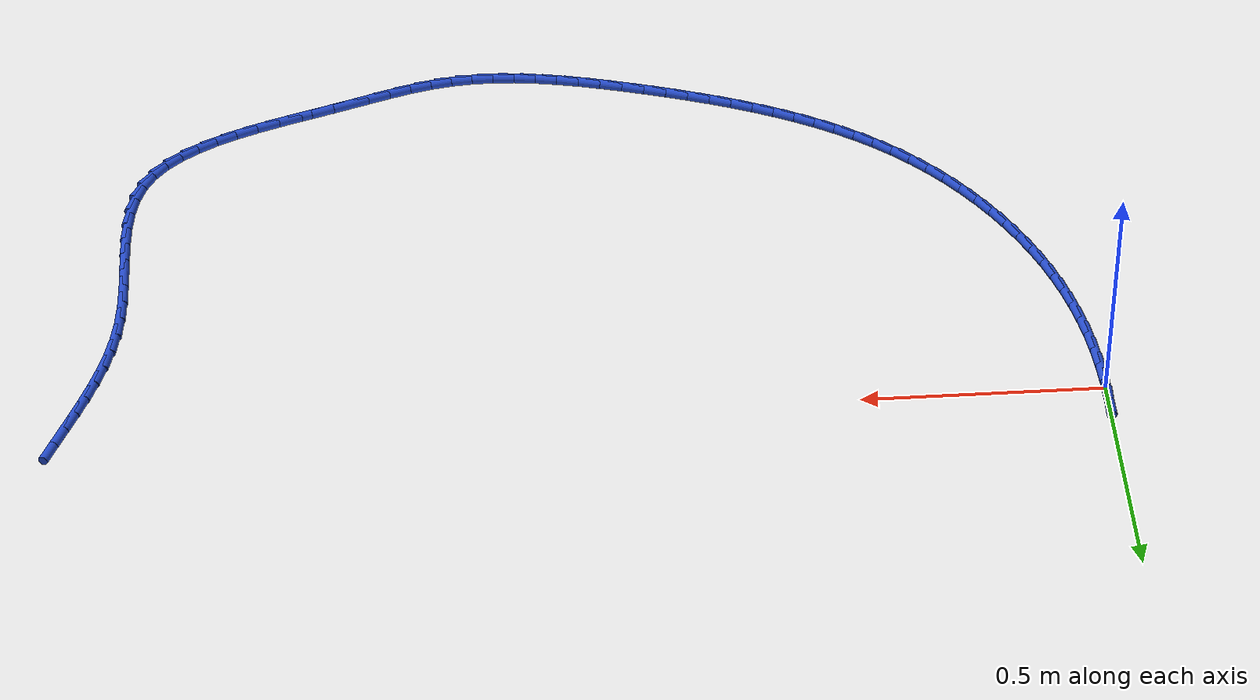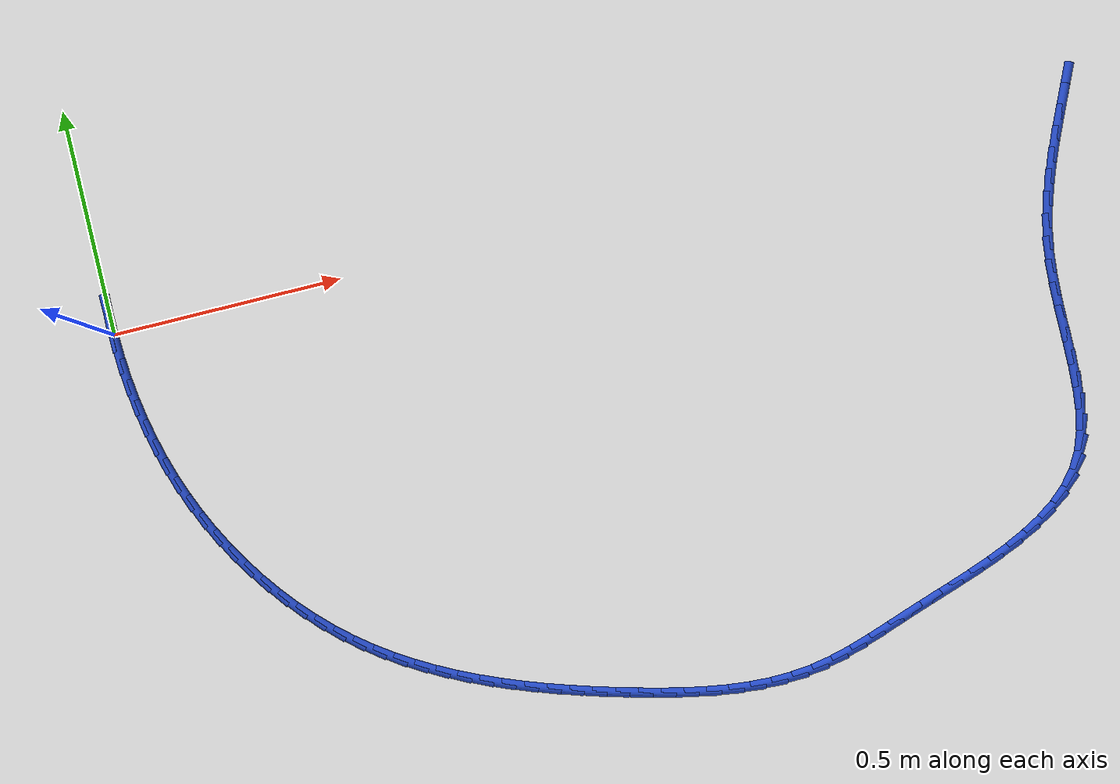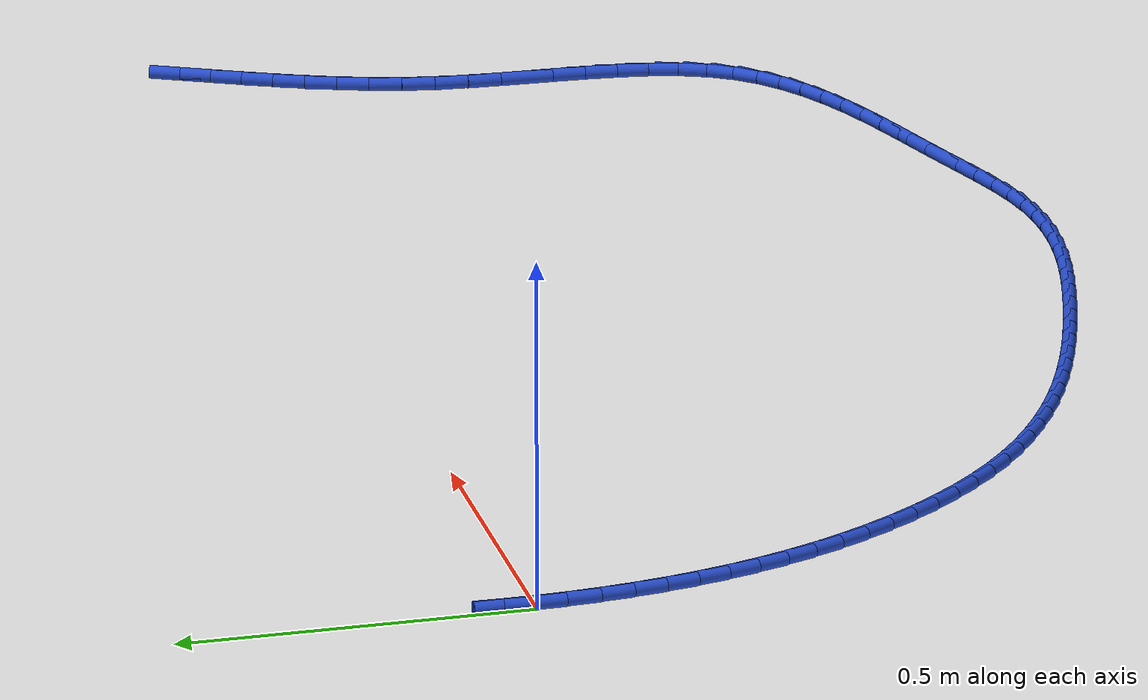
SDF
<sdf version="1.6">
 <world name="default">
  <model name="ground_plane">
   <static>1</static>
   <link name="link">
    <collision name="collision">
     <geometry><plane><normal>0 0 1</normal><size>100 100</size></plane></geometry>
     <surface><friction><ode><mu>100</mu><mu2>50</mu2></ode></friction></surface>
    </collision>
    <visual name="visual">
     <cast_shadows>0</cast_shadows>
     <geometry><plane><normal>0 0 1</normal><size>100 100</size></plane></geometry>
     <material>
      <script><uri>file://media/materials/scripts/gazebo.material</uri><name>Gazebo/WhiteGlow</name></script>
     </material>
    </visual>
   </link>
  </model>
  <model name="line">
   <link name="link_0">
    <pose>6.071532165918825e-18 8.326672684688674e-17 0.01 0 1.57 -1.5597542882293989</pose>
    <collision name="collision">
     <geometry><cylinder><radius>0.01</radius><length>0.08</length></cylinder></geometry>
    </collision>
    <visual name="visual">
     <material>
      <script><name>Gazebo/Blue</name><uri>file://media/materials/scripts/gazebo.material</uri></script>
     </material>
     <geometry><cylinder><radius>0.01</radius><length>0.08</length></cylinder></geometry>
    </visual>
   </link>
   <link name="link_1">
    <pose>-0.0005402952393984356 0.04892876231369978 0.01 0 1.57 1.541204479486744</pose>
    <collision name="collision">
     <geometry><cylinder><radius>0.01</radius><length>0.08</length></cylinder></geometry>
    </collision>
    <visual name="visual">
     <material>
      <script><name>Gazebo/Blue</name><uri>file://media/materials/scripts/gazebo.material</uri></script>
     </material>
     <geometry><cylinder><radius>0.01</radius><length>0.08</length></cylinder></geometry>
    </visual>
   </link>
   <link name="link_78">
    <pose>2.1295487594955205 0.03743914772433124 0.01 0 1.57 1.1259487516540034</pose>
    <collision name="collision">
     <geometry><cylinder><radius>0.01</radius><length>0.08</length></cylinder></geometry>
    </collision>
    <visual name="visual">
     <material>
      <script><name>Gazebo/Blue</name><uri>file://media/materials/scripts/gazebo.material</uri></script>
     </material>
     <geometry><cylinder><radius>0.01</radius><length>0.08</length></cylinder></geometry>
    </visual>
   </link>
   <link name="link_79">
    <pose>2.1091169455305026 -0.005420354326589889 0.01 0 1.57 1.126731117023253</pose>
    <collision name="collision">
     <geometry><cylinder><radius>0.01</radius><length>0.08</length></cylinder></geometry>
    </collision>
    <visual name="visual">
     <material>
      <script><name>Gazebo/Blue</name><uri>file://media/materials/scripts/gazebo.material</uri></script>
     </material>
     <geometry><cylinder><radius>0.01</radius><length>0.08</length></cylinder></geometry>
    </visual>
   </link>
   <link name="link_80">
    <pose>2.0886274414572825 -0.04848758235811345 0.01 0 1.57 1.1395375372983945</pose>
    <collision name="collision">
     <geometry><cylinder><radius>0.01</radius><length>0.08</length></cylinder></geometry>
    </collision>
    <visual name="visual">
     <material>
      <script><name>Gazebo/Blue</name><uri>file://media/materials/scripts/gazebo.material</uri></script>
     </material>
     <geometry><cylinder><radius>0.01</radius><length>0.08</length></cylinder></geometry>
    </visual>
   </link>
   <link name="link_81">
    <pose>2.0686316028050733 -0.09194305552503665 0.01 0 1.57 1.1643073467445144</pose>
    <collision name="collision">
     <geometry><cylinder><radius>0.01</radius><length>0.08</length></cylinder></geometry>
    </collision>
    <visual name="visual">
     <material>
      <script><name>Gazebo/Blue</name><uri>file://media/materials/scripts/gazebo.material</uri></script>
     </material>
     <geometry><cylinder><radius>0.01</radius><length>0.08</length></cylinder></geometry>
    </visual>
   </link>
   <link name="link_82">
    <pose>2.049680785103091 -0.13596729298215476 0.01 0 1.57 1.2010207366002288</pose>
    <collision name="collision">
     <geometry><cylinder><radius>0.01</radius><length>0.08</length></cylinder></geometry>
    </collision>
    <visual name="visual">
     <material>
      <script><name>Gazebo/Blue</name><uri>file://media/materials/scripts/gazebo.material</uri></script>
     </material>
     <geometry><cylinder><radius>0.01</radius><length>0.08</length></cylinder></geometry>
    </visual>
   </link>
   <link name="link_83">
    <pose>2.03232634388055 -0.18074081388426289 0.01 0 1.57 1.2495919755594584</pose>
    <collision name="collision">
     <geometry><cylinder><radius>0.01</radius><length>0.08</length></cylinder></geometry>
    </collision>
    <visual name="visual">
     <material>
      <script><name>Gazebo/Blue</name><uri>file://media/materials/scripts/gazebo.material</uri></script>
     </material>
     <geometry><cylinder><radius>0.01</radius><length>0.08</length></cylinder></geometry>
    </visual>
   </link>
   <link name="link_84">
    <pose>2.017119634666665 -0.22644413738615832 0.01 0 1.57 1.3097157015065861</pose>
    <collision name="collision">
     <geometry><cylinder><radius>0.01</radius><length>0.08</length></cylinder></geometry>
    </collision>
    <visual name="visual">
     <material>
      <script><name>Gazebo/Blue</name><uri>file://media/materials/scripts/gazebo.material</uri></script>
     </material>
     <geometry><cylinder><radius>0.01</radius><length>0.08</length></cylinder></geometry>
    </visual>
   </link>
   <link name="link_85">
    <pose>2.004612012990652 -0.2732577826426355 0.01 0 1.57 1.3806765601021136</pose>
    <collision name="collision">
     <geometry><cylinder><radius>0.01</radius><length>0.08</length></cylinder></geometry>
    </collision>
    <visual name="visual">
     <material>
      <script><name>Gazebo/Blue</name><uri>file://media/materials/scripts/gazebo.material</uri></script>
     </material>
     <geometry><cylinder><radius>0.01</radius><length>0.08</length></cylinder></geometry>
    </visual>
   </link>
   <link name="link_86">
    <pose>1.9953546116338436 -0.32136216407954804 0.01 0 1.57 1.4537378015769884</pose>
    <collision name="collision">
     <geometry><cylinder><radius>0.01</radius><length>0.08</length></cylinder></geometry>
    </collision>
    <visual name="visual">
     <material>
      <script><name>Gazebo/Blue</name><uri>file://media/materials/scripts/gazebo.material</uri></script>
     </material>
     <geometry><cylinder><radius>0.01</radius><length>0.08</length></cylinder></geometry>
    </visual>
   </link>
   <link name="link_87">
    <pose>1.9895443070122918 -0.3707711360869299 0.01 0 1.57 1.5063964218680699</pose>
    <collision name="collision">
     <geometry><cylinder><radius>0.01</radius><length>0.08</length></cylinder></geometry>
    </collision>
    <visual name="visual">
     <material>
      <script><name>Gazebo/Blue</name><uri>file://media/materials/scripts/gazebo.material</uri></script>
     </material>
     <geometry><cylinder><radius>0.01</radius><length>0.08</length></cylinder></geometry>
    </visual>
   </link>
   <link name="link_88">
    <pose>1.9863054618118219 -0.4209942913313108 0.01 0 1.57 1.5362184551931717</pose>
    <collision name="collision">
     <geometry><cylinder><radius>0.01</radius><length>0.08</length></cylinder></geometry>
    </collision>
    <visual name="visual">
     <material>
      <script><name>Gazebo/Blue</name><uri>file://media/materials/scripts/gazebo.material</uri></script>
     </material>
     <geometry><cylinder><radius>0.01</radius><length>0.08</length></cylinder></geometry>
    </visual>
   </link>
   <link name="link_89">
    <pose>1.9845602480158848 -0.4714461588644795 0.01 0 1.57 1.5442648252155826</pose>
    <collision name="collision">
     <geometry><cylinder><radius>0.01</radius><length>0.08</length></cylinder></geometry>
    </collision>
    <visual name="visual">
     <material>
      <script><name>Gazebo/Blue</name><uri>file://media/materials/scripts/gazebo.material</uri></script>
     </material>
     <geometry><cylinder><radius>0.01</radius><length>0.08</length></cylinder></geometry>
    </visual>
   </link>
   <link name="link_90">
    <pose>1.9832308376079324 -0.5215412677382232 0.01 0 1.57 1.5303033484049997</pose>
    <collision name="collision">
     <geometry><cylinder><radius>0.01</radius><length>0.08</length></cylinder></geometry>
    </collision>
    <visual name="visual">
     <material>
      <script><name>Gazebo/Blue</name><uri>file://media/materials/scripts/gazebo.material</uri></script>
     </material>
     <geometry><cylinder><radius>0.01</radius><length>0.08</length></cylinder></geometry>
    </visual>
   </link>
   <link name="link_91">
    <pose>1.9812394025714148 -0.5706941470043279 0.01 0 1.57 1.4926090893344475</pose>
    <collision name="collision">
     <geometry><cylinder><radius>0.01</radius><length>0.08</length></cylinder></geometry>
    </collision>
    <visual name="visual">
     <material>
      <script><name>Gazebo/Blue</name><uri>file://media/materials/scripts/gazebo.material</uri></script>
     </material>
     <geometry><cylinder><radius>0.01</radius><length>0.08</length></cylinder></geometry>
    </visual>
   </link>
   <link name="link_92">
    <pose>1.9775081148897848 -0.6183193257145835 0.01 0 1.57 1.4278819313989901</pose>
    <collision name="collision">
     <geometry><cylinder><radius>0.01</radius><length>0.08</length></cylinder></geometry>
    </collision>
    <visual name="visual">
     <material>
      <script><name>Gazebo/Blue</name><uri>file://media/materials/scripts/gazebo.material</uri></script>
     </material>
     <geometry><cylinder><radius>0.01</radius><length>0.08</length></cylinder></geometry>
    </visual>
   </link>
   <link name="link_93">
    <pose>1.9709591465464906 -0.6638313329207748 0.01 0 1.57 1.3315163825500467</pose>
    <collision name="collision">
     <geometry><cylinder><radius>0.01</radius><length>0.08</length></cylinder></geometry>
    </collision>
    <visual name="visual">
     <material>
      <script><name>Gazebo/Blue</name><uri>file://media/materials/scripts/gazebo.material</uri></script>
     </material>
     <geometry><cylinder><radius>0.01</radius><length>0.08</length></cylinder></geometry>
    </visual>
   </link>
   <link name="link_94">
    <pose>1.9605146695249858 -0.706644697674692 0.01 0 1.57 1.1989093873212857</pose>
    <collision name="collision">
     <geometry><cylinder><radius>0.01</radius><length>0.08</length></cylinder></geometry>
    </collision>
    <visual name="visual">
     <material>
      <script><name>Gazebo/Blue</name><uri>file://media/materials/scripts/gazebo.material</uri></script>
     </material>
     <geometry><cylinder><radius>0.01</radius><length>0.08</length></cylinder></geometry>
    </visual>
   </link>
   <link name="link_95">
    <pose>1.9450968558087198 -0.746173949028121 0.01 0 1.57 1.0294599945411178</pose>
    <collision name="collision">
     <geometry><cylinder><radius>0.01</radius><length>0.08</length></cylinder></geometry>
    </collision>
    <visual name="visual">
     <material>
      <script><name>Gazebo/Blue</name><uri>file://media/materials/scripts/gazebo.material</uri></script>
     </material>
     <geometry><cylinder><radius>0.01</radius><length>0.08</length></cylinder></geometry>
    </visual>
   </link>
   <link name="link_96">
    <pose>1.923649501951573 -0.7818453673206515 0.01 0 1.57 0.8516620677811731</pose>
    <collision name="collision">
     <geometry><cylinder><radius>0.01</radius><length>0.08</length></cylinder></geometry>
    </collision>
    <visual name="visual">
     <material>
      <script><name>Gazebo/Blue</name><uri>file://media/materials/scripts/gazebo.material</uri></script>
     </material>
     <geometry><cylinder><radius>0.01</radius><length>0.08</length></cylinder></geometry>
    </visual>
   </link>
   <link name="link_97">
    <pose>1.895916945658604 -0.8135202653239123 0.01 0 1.57 0.7014278966095441</pose>
    <collision name="collision">
     <geometry><cylinder><radius>0.01</radius><length>0.08</length></cylinder></geometry>
    </collision>
    <visual name="visual">
     <material>
      <script><name>Gazebo/Blue</name><uri>file://media/materials/scripts/gazebo.material</uri></script>
     </material>
     <geometry><cylinder><radius>0.01</radius><length>0.08</length></cylinder></geometry>
    </visual>
   </link>
   <link name="link_98">
    <pose>1.8626608267356737 -0.8416127811157331 0.01 0 1.57 0.5817469343441324</pose>
    <collision name="collision">
     <geometry><cylinder><radius>0.01</radius><length>0.08</length></cylinder></geometry>
    </collision>
    <visual name="visual">
     <material>
      <script><name>Gazebo/Blue</name><uri>file://media/materials/scripts/gazebo.material</uri></script>
     </material>
     <geometry><cylinder><radius>0.01</radius><length>0.08</length></cylinder></geometry>
    </visual>
   </link>
   <link name="link_99">
    <pose>1.8247085435567925 -0.866572787488879 0.01 0 1.57 0.4894510212537441</pose>
    <collision name="collision">
     <geometry><cylinder><radius>0.01</radius><length>0.08</length></cylinder></geometry>
    </collision>
    <visual name="visual">
     <material>
      <script><name>Gazebo/Blue</name><uri>file://media/materials/scripts/gazebo.material</uri></script>
     </material>
     <geometry><cylinder><radius>0.01</radius><length>0.08</length></cylinder></geometry>
    </visual>
   </link>
   <link name="link_100">
    <pose>1.7828874944959732 -0.8888501572361142 0.01 0 1.57 0.4201910721192538</pose>
    <collision name="collision">
     <geometry><cylinder><radius>0.01</radius><length>0.08</length></cylinder></geometry>
    </collision>
    <visual name="visual">
     <material>
      <script><name>Gazebo/Blue</name><uri>file://media/materials/scripts/gazebo.material</uri></script>
     </material>
     <geometry><cylinder><radius>0.01</radius><length>0.08</length></cylinder></geometry>
    </visual>
   </link>
   <link name="link_101">
    <pose>1.738025077927228 -0.908894763150203 0.01 0 1.57 0.3700465122258667</pose>
    <collision name="collision">
     <geometry><cylinder><radius>0.01</radius><length>0.08</length></cylinder></geometry>
    </collision>
    <visual name="visual">
     <material>
      <script><name>Gazebo/Blue</name><uri>file://media/materials/scripts/gazebo.material</uri></script>
     </material>
     <geometry><cylinder><radius>0.01</radius><length>0.08</length></cylinder></geometry>
    </visual>
   </link>
   <link name="link_102">
    <pose>1.690948692224568 -0.9271564780239107 0.01 0 1.57 0.3360618508742253</pose>
    <collision name="collision">
     <geometry><cylinder><radius>0.01</radius><length>0.08</length></cylinder></geometry>
    </collision>
    <visual name="visual">
     <material>
      <script><name>Gazebo/Blue</name><uri>file://media/materials/scripts/gazebo.material</uri></script>
     </material>
     <geometry><cylinder><radius>0.01</radius><length>0.08</length></cylinder></geometry>
    </visual>
   </link>
   <link name="link_103">
    <pose>1.6424857357620055 -0.9440851746500015 0.01 0 1.57 0.31632197173776677</pose>
    <collision name="collision">
     <geometry><cylinder><radius>0.01</radius><length>0.08</length></cylinder></geometry>
    </collision>
    <visual name="visual">
     <material>
      <script><name>Gazebo/Blue</name><uri>file://media/materials/scripts/gazebo.material</uri></script>
     </material>
     <geometry><cylinder><radius>0.01</radius><length>0.08</length></cylinder></geometry>
    </visual>
   </link>
   <link name="link_104">
    <pose>1.5934636069135544 -0.96013072582124 0.01 0 1.57 0.30990814692698104</pose>
    <collision name="collision">
     <geometry><cylinder><radius>0.01</radius><length>0.08</length></cylinder></geometry>
    </collision>
    <visual name="visual">
     <material>
      <script><name>Gazebo/Blue</name><uri>file://media/materials/scripts/gazebo.material</uri></script>
     </material>
     <geometry><cylinder><radius>0.01</radius><length>0.08</length></cylinder></geometry>
    </visual>
   </link>
   <link name="link_105">
    <pose>1.5447097040532245 -0.9757430043303912 0.01 0 1.57 0.3166155469952428</pose>
    <collision name="collision">
     <geometry><cylinder><radius>0.01</radius><length>0.08</length></cylinder></geometry>
    </collision>
    <visual name="visual">
     <material>
      <script><name>Gazebo/Blue</name><uri>file://media/materials/scripts/gazebo.material</uri></script>
     </material>
     <geometry><cylinder><radius>0.01</radius><length>0.08</length></cylinder></geometry>
    </visual>
   </link>
   <link name="link_106">
    <pose>1.4970406149158635 -0.9913611840413539 0.01 0 1.57 0.3245641332559445</pose>
    <collision name="collision">
     <geometry><cylinder><radius>0.01</radius><length>0.08</length></cylinder></geometry>
    </collision>
    <visual name="visual">
     <material>
      <script><name>Gazebo/Blue</name><uri>file://media/materials/scripts/gazebo.material</uri></script>
     </material>
     <geometry><cylinder><radius>0.01</radius><length>0.08</length></cylinder></geometry>
    </visual>
   </link>
   <link name="link_107">
    <pose>1.4507721122703883 -1.0069287989568516 0.01 0 1.57 0.3154102349154724</pose>
    <collision name="collision">
     <geometry><cylinder><radius>0.01</radius><length>0.08</length></cylinder></geometry>
    </collision>
    <visual name="visual">
     <material>
      <script><name>Gazebo/Blue</name><uri>file://media/materials/scripts/gazebo.material</uri></script>
     </material>
     <geometry><cylinder><radius>0.01</radius><length>0.08</length></cylinder></geometry>
    </visual>
   </link>
   <link name="link_108">
    <pose>1.4055185297306805 -1.021695192152662 0.01 0 1.57 0.2865145292667186</pose>
    <collision name="collision">
     <geometry><cylinder><radius>0.01</radius><length>0.08</length></cylinder></geometry>
    </collision>
    <visual name="visual">
     <material>
      <script><name>Gazebo/Blue</name><uri>file://media/materials/scripts/gazebo.material</uri></script>
     </material>
     <geometry><cylinder><radius>0.01</radius><length>0.08</length></cylinder></geometry>
    </visual>
   </link>
   <link name="link_109">
    <pose>1.3608418323408615 -1.0348578792784444 0.01 0 1.57 0.23697567218254945</pose>
    <collision name="collision">
     <geometry><cylinder><radius>0.01</radius><length>0.08</length></cylinder></geometry>
    </collision>
    <visual name="visual">
     <material>
      <script><name>Gazebo/Blue</name><uri>file://media/materials/scripts/gazebo.material</uri></script>
     </material>
     <geometry><cylinder><radius>0.01</radius><length>0.08</length></cylinder></geometry>
    </visual>
   </link>
   <link name="link_110">
    <pose>1.316303985145051 -1.045614375983858 0.01 0 1.57 0.16677964045662463</pose>
    <collision name="collision">
     <geometry><cylinder><radius>0.01</radius><length>0.08</length></cylinder></geometry>
    </collision>
    <visual name="visual">
     <material>
      <script><name>Gazebo/Blue</name><uri>file://media/materials/scripts/gazebo.material</uri></script>
     </material>
     <geometry><cylinder><radius>0.01</radius><length>0.08</length></cylinder></geometry>
    </visual>
   </link>
   <link name="link_111">
    <pose>1.2714670366838945 -1.0531623799524858 0.01 0 1.57 0.08342344863393857</pose>
    <collision name="collision">
     <geometry><cylinder><radius>0.01</radius><length>0.08</length></cylinder></geometry>
    </collision>
    <visual name="visual">
     <material>
      <script><name>Gazebo/Blue</name><uri>file://media/materials/scripts/gazebo.material</uri></script>
     </material>
     <geometry><cylinder><radius>0.01</radius><length>0.08</length></cylinder></geometry>
    </visual>
   </link>
   <link name="link_112">
    <pose>1.2260138859670624 -1.0569630595374513 0.01 0 1.57 0.006617679635156792</pose>
    <collision name="collision">
     <geometry><cylinder><radius>0.01</radius><length>0.08</length></cylinder></geometry>
    </collision>
    <visual name="visual">
     <material>
      <script><name>Gazebo/Blue</name><uri>file://media/materials/scripts/gazebo.material</uri></script>
     </material>
     <geometry><cylinder><radius>0.01</radius><length>0.08</length></cylinder></geometry>
    </visual>
   </link>
   <link name="link_113">
    <pose>1.1799898189328326 -1.0572676365147864 0.01 0 1.57 -0.06001207576289978</pose>
    <collision name="collision">
     <geometry><cylinder><radius>0.01</radius><length>0.08</length></cylinder></geometry>
    </collision>
    <visual name="visual">
     <material>
      <script><name>Gazebo/Blue</name><uri>file://media/materials/scripts/gazebo.material</uri></script>
     </material>
     <geometry><cylinder><radius>0.01</radius><length>0.08</length></cylinder></geometry>
    </visual>
   </link>
   <link name="link_114">
    <pose>1.1335077620031517 -1.0544747982323448 0.01 0 1.57 -0.11673997232816248</pose>
    <collision name="collision">
     <geometry><cylinder><radius>0.01</radius><length>0.08</length></cylinder></geometry>
    </collision>
    <visual name="visual">
     <material>
      <script><name>Gazebo/Blue</name><uri>file://media/materials/scripts/gazebo.material</uri></script>
     </material>
     <geometry><cylinder><radius>0.01</radius><length>0.08</length></cylinder></geometry>
    </visual>
   </link>
   <link name="link_115">
    <pose>1.0866806415999646 -1.0489832320379817 0.01 0 1.57 -0.16408157479082341</pose>
    <collision name="collision">
     <geometry><cylinder><radius>0.01</radius><length>0.08</length></cylinder></geometry>
    </collision>
    <visual name="visual">
     <material>
      <script><name>Gazebo/Blue</name><uri>file://media/materials/scripts/gazebo.material</uri></script>
     </material>
     <geometry><cylinder><radius>0.01</radius><length>0.08</length></cylinder></geometry>
    </visual>
   </link>
   <link name="link_116">
    <pose>1.039621384145217 -1.0411916252795508 0.01 0 1.57 -0.2026333327278535</pose>
    <collision name="collision">
     <geometry><cylinder><radius>0.01</radius><length>0.08</length></cylinder></geometry>
    </collision>
    <visual name="visual">
     <material>
      <script><name>Gazebo/Blue</name><uri>file://media/materials/scripts/gazebo.material</uri></script>
     </material>
     <geometry><cylinder><radius>0.01</radius><length>0.08</length></cylinder></geometry>
    </visual>
   </link>
   <link name="link_117">
    <pose>0.9924429160608571 -1.0314986653049076 0.01 0 1.57 -0.23296406980638998</pose>
    <collision name="collision">
     <geometry><cylinder><radius>0.01</radius><length>0.08</length></cylinder></geometry>
    </collision>
    <visual name="visual">
     <material>
      <script><name>Gazebo/Blue</name><uri>file://media/materials/scripts/gazebo.material</uri></script>
     </material>
     <geometry><cylinder><radius>0.01</radius><length>0.08</length></cylinder></geometry>
    </visual>
   </link>
   <link name="link_118">
    <pose>0.945258163768828 -1.0203030394619057 0.01 0 1.57 -0.2555474623899086</pose>
    <collision name="collision">
     <geometry><cylinder><radius>0.01</radius><length>0.08</length></cylinder></geometry>
    </collision>
    <visual name="visual">
     <material>
      <script><name>Gazebo/Blue</name><uri>file://media/materials/scripts/gazebo.material</uri></script>
     </material>
     <geometry><cylinder><radius>0.01</radius><length>0.08</length></cylinder></geometry>
    </visual>
   </link>
   <link name="link_119">
    <pose>0.8981800536910772 -1.0080034350984 0.01 0 1.57 -0.2712168360851853</pose>
    <collision name="collision">
     <geometry><cylinder><radius>0.01</radius><length>0.08</length></cylinder></geometry>
    </collision>
    <visual name="visual">
     <material>
      <script><name>Gazebo/Blue</name><uri>file://media/materials/scripts/gazebo.material</uri></script>
     </material>
     <geometry><cylinder><radius>0.01</radius><length>0.08</length></cylinder></geometry>
    </visual>
   </link>
   <link name="link_120">
    <pose>0.8513207522990911 -0.9949733339397069 0.01 0 1.57 -0.2860091408012626</pose>
    <collision name="collision">
     <geometry><cylinder><radius>0.01</radius><length>0.08</length></cylinder></geometry>
    </collision>
    <visual name="visual">
     <material>
      <script><name>Gazebo/Blue</name><uri>file://media/materials/scripts/gazebo.material</uri></script>
     </material>
     <geometry><cylinder><radius>0.01</radius><length>0.08</length></cylinder></geometry>
    </visual>
   </link>
   <link name="link_121">
    <pose>0.8047834355938411 -0.981288026686066 0.01 0 1.57 -0.30383685628598345</pose>
    <collision name="collision">
     <geometry><cylinder><radius>0.01</radius><length>0.08</length></cylinder></geometry>
    </collision>
    <visual name="visual">
     <material>
      <script><name>Gazebo/Blue</name><uri>file://media/materials/scripts/gazebo.material</uri></script>
     </material>
     <geometry><cylinder><radius>0.01</radius><length>0.08</length></cylinder></geometry>
    </visual>
   </link>
   <link name="link_122">
    <pose>0.7586654043056431 -0.9668279362634021 0.01 0 1.57 -0.32485176671512855</pose>
    <collision name="collision">
     <geometry><cylinder><radius>0.01</radius><length>0.08</length></cylinder></geometry>
    </collision>
    <visual name="visual">
     <material>
      <script><name>Gazebo/Blue</name><uri>file://media/materials/scripts/gazebo.material</uri></script>
     </material>
     <geometry><cylinder><radius>0.01</radius><length>0.08</length></cylinder></geometry>
    </visual>
   </link>
   <link name="link_123">
    <pose>0.7130638578197797 -0.9514701242408662 0.01 0 1.57 -0.34914886011278234</pose>
    <collision name="collision">
     <geometry><cylinder><radius>0.01</radius><length>0.08</length></cylinder></geometry>
    </collision>
    <visual name="visual">
     <material>
      <script><name>Gazebo/Blue</name><uri>file://media/materials/scripts/gazebo.material</uri></script>
     </material>
     <geometry><cylinder><radius>0.01</radius><length>0.08</length></cylinder></geometry>
    </visual>
   </link>
   <link name="link_124">
    <pose>0.6680759955215345 -0.9350916521876084 0.01 0 1.57 -0.37682660419285013</pose>
    <collision name="collision">
     <geometry><cylinder><radius>0.01</radius><length>0.08</length></cylinder></geometry>
    </collision>
    <visual name="visual">
     <material>
      <script><name>Gazebo/Blue</name><uri>file://media/materials/scripts/gazebo.material</uri></script>
     </material>
     <geometry><cylinder><radius>0.01</radius><length>0.08</length></cylinder></geometry>
    </visual>
   </link>
   <link name="link_125">
    <pose>0.623799016796192 -0.9175695816727798 0.01 0 1.57 -0.40797945272046254</pose>
    <collision name="collision">
     <geometry><cylinder><radius>0.01</radius><length>0.08</length></cylinder></geometry>
    </collision>
    <visual name="visual">
     <material>
      <script><name>Gazebo/Blue</name><uri>file://media/materials/scripts/gazebo.material</uri></script>
     </material>
     <geometry><cylinder><radius>0.01</radius><length>0.08</length></cylinder></geometry>
    </visual>
   </link>
   <link name="link_126">
    <pose>0.5803301210290339 -0.8987809742655303 0.01 0 1.57 -0.4426883171662665</pose>
    <collision name="collision">
     <geometry><cylinder><radius>0.01</radius><length>0.08</length></cylinder></geometry>
    </collision>
    <visual name="visual">
     <material>
      <script><name>Gazebo/Blue</name><uri>file://media/materials/scripts/gazebo.material</uri></script>
     </material>
     <geometry><cylinder><radius>0.01</radius><length>0.08</length></cylinder></geometry>
    </visual>
   </link>
   <link name="link_127">
    <pose>0.5377665076053448 -0.8786028915350108 0.01 0 1.57 -0.48100883896922186</pose>
    <collision name="collision">
     <geometry><cylinder><radius>0.01</radius><length>0.08</length></cylinder></geometry>
    </collision>
    <visual name="visual">
     <material>
      <script><name>Gazebo/Blue</name><uri>file://media/materials/scripts/gazebo.material</uri></script>
     </material>
     <geometry><cylinder><radius>0.01</radius><length>0.08</length></cylinder></geometry>
    </visual>
   </link>
   <link name="link_128">
    <pose>0.4962053759104069 -0.8569123950503713 0.01 0 1.57 -0.5229575446463163</pose>
    <collision name="collision">
     <geometry><cylinder><radius>0.01</radius><length>0.08</length></cylinder></geometry>
    </collision>
    <visual name="visual">
     <material>
      <script><name>Gazebo/Blue</name><uri>file://media/materials/scripts/gazebo.material</uri></script>
     </material>
     <geometry><cylinder><radius>0.01</radius><length>0.08</length></cylinder></geometry>
    </visual>
   </link>
   <link name="link_129">
    <pose>0.4557439253295041 -0.833586546380762 0.01 0 1.57 -0.5684963644926296</pose>
    <collision name="collision">
     <geometry><cylinder><radius>0.01</radius><length>0.08</length></cylinder></geometry>
    </collision>
    <visual name="visual">
     <material>
      <script><name>Gazebo/Blue</name><uri>file://media/materials/scripts/gazebo.material</uri></script>
     </material>
     <geometry><cylinder><radius>0.01</radius><length>0.08</length></cylinder></geometry>
    </visual>
   </link>
   <link name="link_130">
    <pose>0.4164793552479208 -0.8085024070953347 0.01 0 1.57 -0.6175165490645745</pose>
    <collision name="collision">
     <geometry><cylinder><radius>0.01</radius><length>0.08</length></cylinder></geometry>
    </collision>
    <visual name="visual">
     <material>
      <script><name>Gazebo/Blue</name><uri>file://media/materials/scripts/gazebo.material</uri></script>
     </material>
     <geometry><cylinder><radius>0.01</radius><length>0.08</length></cylinder></geometry>
    </visual>
   </link>
   <link name="link_131">
    <pose>0.37850886505093856 -0.7815370387632383 0.01 0 1.57 -0.6698236741678875</pose>
    <collision name="collision">
     <geometry><cylinder><radius>0.01</radius><length>0.08</length></cylinder></geometry>
    </collision>
    <visual name="visual">
     <material>
      <script><name>Gazebo/Blue</name><uri>file://media/materials/scripts/gazebo.material</uri></script>
     </material>
     <geometry><cylinder><radius>0.01</radius><length>0.08</length></cylinder></geometry>
    </visual>
   </link>
   <link name="link_132">
    <pose>0.34192965412384224 -0.7525675029536245 0.01 0 1.57 -0.7248565198020125</pose>
    <collision name="collision">
     <geometry><cylinder><radius>0.01</radius><length>0.08</length></cylinder></geometry>
    </collision>
    <visual name="visual">
     <material>
      <script><name>Gazebo/Blue</name><uri>file://media/materials/scripts/gazebo.material</uri></script>
     </material>
     <geometry><cylinder><radius>0.01</radius><length>0.08</length></cylinder></geometry>
    </visual>
   </link>
   <link name="link_133">
    <pose>0.3068379455068249 -0.721486877967123 0.01 0 1.57 -0.7795255132491349</pose>
    <collision name="collision">
     <geometry><cylinder><radius>0.01</radius><length>0.08</length></cylinder></geometry>
    </collision>
    <visual name="visual">
     <material>
      <script><name>Gazebo/Blue</name><uri>file://media/materials/scripts/gazebo.material</uri></script>
     </material>
     <geometry><cylinder><radius>0.01</radius><length>0.08</length></cylinder></geometry>
    </visual>
   </link>
   <link name="link_134">
    <pose>0.27331950288826096 -0.6883598255244492 0.01 0 1.57 -0.8323041004937256</pose>
    <collision name="collision">
     <geometry><cylinder><radius>0.01</radius><length>0.08</length></cylinder></geometry>
    </collision>
    <visual name="visual">
     <material>
      <script><name>Gazebo/Blue</name><uri>file://media/materials/scripts/gazebo.material</uri></script>
     </material>
     <geometry><cylinder><radius>0.01</radius><length>0.08</length></cylinder></geometry>
    </visual>
   </link>
   <link name="link_135">
    <pose>0.24145374216295723 -0.6533551415363639 0.01 0 1.57 -0.8834924357110876</pose>
    <collision name="collision">
     <geometry><cylinder><radius>0.01</radius><length>0.08</length></cylinder></geometry>
    </collision>
    <visual name="visual">
     <material>
      <script><name>Gazebo/Blue</name><uri>file://media/materials/scripts/gazebo.material</uri></script>
     </material>
     <geometry><cylinder><radius>0.01</radius><length>0.08</length></cylinder></geometry>
    </visual>
   </link>
   <link name="link_136">
    <pose>0.21131999003754312 -0.6166430850264983 0.01 0 1.57 -0.9334214595181501</pose>
    <collision name="collision">
     <geometry><cylinder><radius>0.01</radius><length>0.08</length></cylinder></geometry>
    </collision>
    <visual name="visual">
     <material>
      <script><name>Gazebo/Blue</name><uri>file://media/materials/scripts/gazebo.material</uri></script>
     </material>
     <geometry><cylinder><radius>0.01</radius><length>0.08</length></cylinder></geometry>
    </visual>
   </link>
   <link name="link_137">
    <pose>0.18299757321864968 -0.5783939150184861 0.01 0 1.57 -0.9824255742372701</pose>
    <collision name="collision">
     <geometry><cylinder><radius>0.01</radius><length>0.08</length></cylinder></geometry>
    </collision>
    <visual name="visual">
     <material>
      <script><name>Gazebo/Blue</name><uri>file://media/materials/scripts/gazebo.material</uri></script>
     </material>
     <geometry><cylinder><radius>0.01</radius><length>0.08</length></cylinder></geometry>
    </visual>
   </link>
   <link name="link_138">
    <pose>0.15656581841290756 -0.5387778905359604 0.01 0 1.57 -1.0308418836739686</pose>
    <collision name="collision">
     <geometry><cylinder><radius>0.01</radius><length>0.08</length></cylinder></geometry>
    </collision>
    <visual name="visual">
     <material>
      <script><name>Gazebo/Blue</name><uri>file://media/materials/scripts/gazebo.material</uri></script>
     </material>
     <geometry><cylinder><radius>0.01</radius><length>0.08</length></cylinder></geometry>
    </visual>
   </link>
   <link name="link_139">
    <pose>0.1321040523269465 -0.4979652706025527 0.01 0 1.57 -1.0790108474797664</pose>
    <collision name="collision">
     <geometry><cylinder><radius>0.01</radius><length>0.08</length></cylinder></geometry>
    </collision>
    <visual name="visual">
     <material>
      <script><name>Gazebo/Blue</name><uri>file://media/materials/scripts/gazebo.material</uri></script>
     </material>
     <geometry><cylinder><radius>0.01</radius><length>0.08</length></cylinder></geometry>
    </visual>
   </link>
   <link name="link_140">
    <pose>0.10969160166739757 -0.45612631424189665 0.01 0 1.57 -1.127277906303158</pose>
    <collision name="collision">
     <geometry><cylinder><radius>0.01</radius><length>0.08</length></cylinder></geometry>
    </collision>
    <visual name="visual">
     <material>
      <script><name>Gazebo/Blue</name><uri>file://media/materials/scripts/gazebo.material</uri></script>
     </material>
     <geometry><cylinder><radius>0.01</radius><length>0.08</length></cylinder></geometry>
    </visual>
   </link>
   <link name="link_141">
    <pose>0.08940779314089048 -0.413431280477624 0.01 0 1.57 -1.1758602136028224</pose>
    <collision name="collision">
     <geometry><cylinder><radius>0.01</radius><length>0.08</length></cylinder></geometry>
    </collision>
    <visual name="visual">
     <material>
      <script><name>Gazebo/Blue</name><uri>file://media/materials/scripts/gazebo.material</uri></script>
     </material>
     <geometry><cylinder><radius>0.01</radius><length>0.08</length></cylinder></geometry>
    </visual>
   </link>
   <link name="link_142">
    <pose>0.07131824845288552 -0.37003409763462763 0.01 0 1.57 -1.224045237836199</pose>
    <collision name="collision">
     <geometry><cylinder><radius>0.01</radius><length>0.08</length></cylinder></geometry>
    </collision>
    <visual name="visual">
     <material>
      <script><name>Gazebo/Blue</name><uri>file://media/materials/scripts/gazebo.material</uri></script>
     </material>
     <geometry><cylinder><radius>0.01</radius><length>0.08</length></cylinder></geometry>
    </visual>
   </link>
   <link name="link_143">
    <pose>0.05540067926655332 -0.32598394159020677 0.01 0 1.57 -1.2712718852038238</pose>
    <collision name="collision">
     <geometry><cylinder><radius>0.01</radius><length>0.08</length></cylinder></geometry>
    </collision>
    <visual name="visual">
     <material>
      <script><name>Gazebo/Blue</name><uri>file://media/materials/scripts/gazebo.material</uri></script>
     </material>
     <geometry><cylinder><radius>0.01</radius><length>0.08</length></cylinder></geometry>
    </visual>
   </link>
   <link name="link_144">
    <pose>0.04159808267884559 -0.28128862280214817 0.01 0 1.57 -1.3172923302368642</pose>
    <collision name="collision">
     <geometry><cylinder><radius>0.01</radius><length>0.08</length></cylinder></geometry>
    </collision>
    <visual name="visual">
     <material>
      <script><name>Gazebo/Blue</name><uri>file://media/materials/scripts/gazebo.material</uri></script>
     </material>
     <geometry><cylinder><radius>0.01</radius><length>0.08</length></cylinder></geometry>
    </visual>
   </link>
   <link name="link_145">
    <pose>0.029853370694696377 -0.23595585033371372 0.01 0 1.57 -1.3618922582545376</pose>
    <collision name="collision">
     <geometry><cylinder><radius>0.01</radius><length>0.08</length></cylinder></geometry>
    </collision>
    <visual name="visual">
     <material>
      <script><name>Gazebo/Blue</name><uri>file://media/materials/scripts/gazebo.material</uri></script>
     </material>
     <geometry><cylinder><radius>0.01</radius><length>0.08</length></cylinder></geometry>
    </visual>
   </link>
   <link name="link_146">
    <pose>0.020109455319038873 -0.18999333324816214 0.01 0 1.57 -1.4048934474333845</pose>
    <collision name="collision">
     <geometry><cylinder><radius>0.01</radius><length>0.08</length></cylinder></geometry>
    </collision>
    <visual name="visual">
     <material>
      <script><name>Gazebo/Blue</name><uri>file://media/materials/scripts/gazebo.material</uri></script>
     </material>
     <geometry><cylinder><radius>0.01</radius><length>0.08</length></cylinder></geometry>
    </visual>
   </link>
   <link name="link_147">
    <pose>0.012309248556806887 -0.14340878060875448 0.01 0 1.57 -1.4461549992745915</pose>
    <collision name="collision">
     <geometry><cylinder><radius>0.01</radius><length>0.08</length></cylinder></geometry>
    </collision>
    <visual name="visual">
     <material>
      <script><name>Gazebo/Blue</name><uri>file://media/materials/scripts/gazebo.material</uri></script>
     </material>
     <geometry><cylinder><radius>0.01</radius><length>0.08</length></cylinder></geometry>
    </visual>
   </link>
   <link name="link_148">
    <pose>0.006395662412934101 -0.09620990147875187 0.01 0 1.57 -1.4855726303024082</pose>
    <collision name="collision">
     <geometry><cylinder><radius>0.01</radius><length>0.08</length></cylinder></geometry>
    </collision>
    <visual name="visual">
     <material>
      <script><name>Gazebo/Blue</name><uri>file://media/materials/scripts/gazebo.material</uri></script>
     </material>
     <geometry><cylinder><radius>0.01</radius><length>0.08</length></cylinder></geometry>
    </visual>
   </link>
   <link name="link_149">
    <pose>0.002311608892353899 -0.0484044049214131 0.01 0 1.57 -1.5230764142770847</pose>
    <collision name="collision">
     <geometry><cylinder><radius>0.01</radius><length>0.08</length></cylinder></geometry>
    </collision>
    <visual name="visual">
     <material>
      <script><name>Gazebo/Blue</name><uri>file://media/materials/scripts/gazebo.material</uri></script>
     </material>
     <geometry><cylinder><radius>0.01</radius><length>0.08</length></cylinder></geometry>
    </visual>
   </link>
   <link name="link_150">
    <pose>1.734723475976807e-17 -5.551115123125783e-17 0.01 0 1.57 -1.5586274223204613</pose>
    <collision name="collision">
     <geometry><cylinder><radius>0.01</radius><length>0.08</length></cylinder></geometry>
    </collision>
    <visual name="visual">
     <material>
      <script><name>Gazebo/Blue</name><uri>file://media/materials/scripts/gazebo.material</uri></script>
     </material>
     <geometry><cylinder><radius>0.01</radius><length>0.08</length></cylinder></geometry>
    </visual>
   </link>
   <link name="link_151">
    <pose>-0.0005962522591940328 0.04899560422222936 0.01 0 1.57 -1.5586274223204615</pose>
    <collision name="collision">
     <geometry><cylinder><radius>0.01</radius><length>0.08</length></cylinder></geometry>
    </collision>
    <visual name="visual">
     <material>
      <script><name>Gazebo/Blue</name><uri>file://media/materials/scripts/gazebo.material</uri></script>
     </material>
     <geometry><cylinder><radius>0.01</radius><length>0.08</length></cylinder></geometry>
    </visual>
   </link>
  </model>
 </world>
</sdf>
